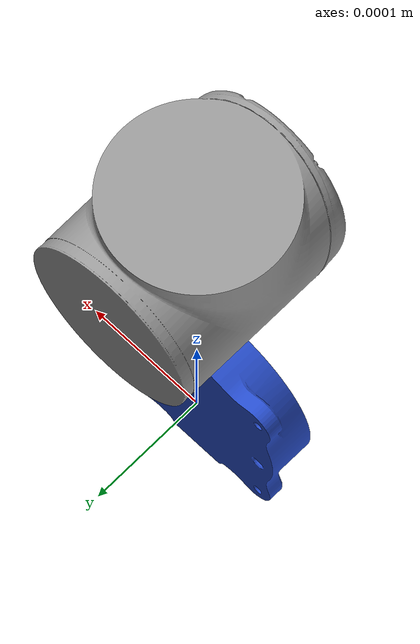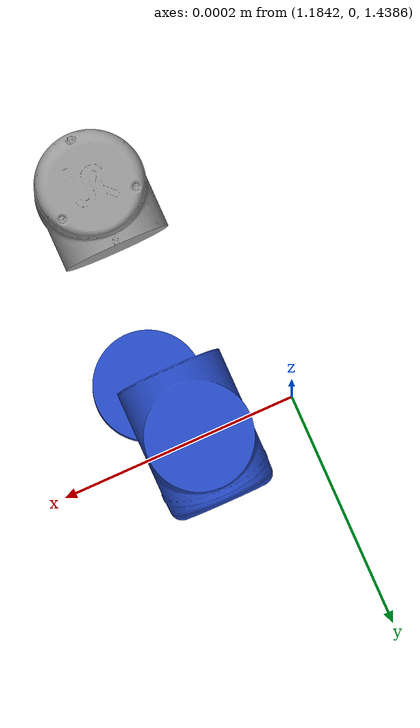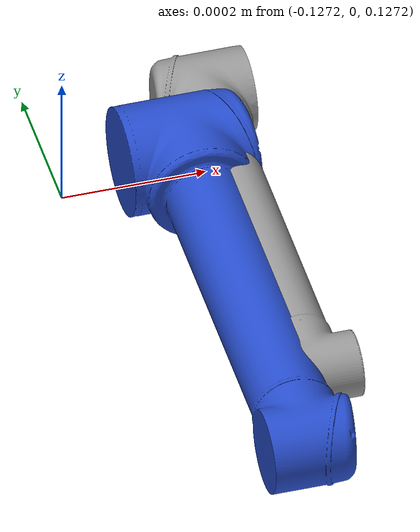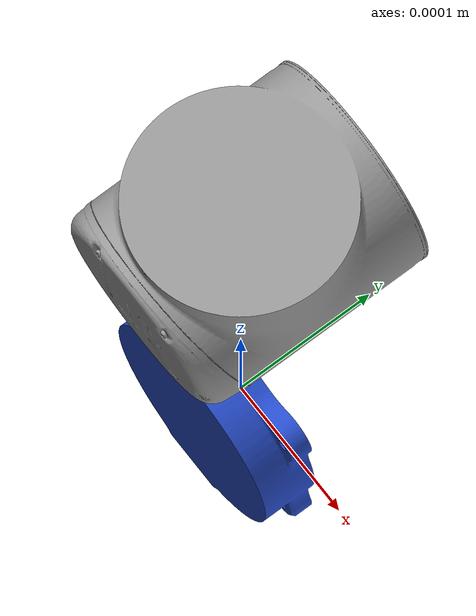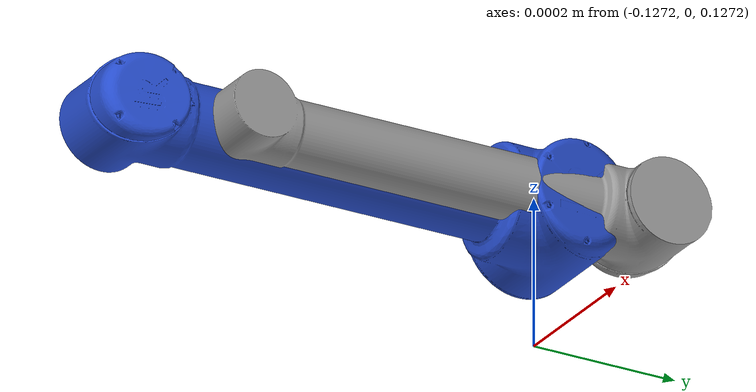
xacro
<?xml version="1.0"?>
<robot xmlns:xacro="http://www.ros.org/wiki/xacro"
       name="ur10" >

  <!-- common stuff -->
  <xacro:include filename="$(find ur_description)/urdf/gazebo.urdf.xacro" />

  <!-- ur10 -->
  <xacro:include filename="$(find ur_description)/urdf/ur10.urdf.xacro" />

  <!-- arm -->
  <xacro:ur10_robot prefix="" cylinders_collision="false"
                    j1_lwr_lmt="${-2.0*pi}" j1_upr_lmt="${2.0*pi}" j1_vel_lmt="2.16"
                    j2_lwr_lmt="${-2.0*pi}" j2_upr_lmt="${2.0*pi}" j2_vel_lmt="2.16"
                    j3_lwr_lmt="${-2.0*pi}" j3_upr_lmt="${2.0*pi}" j3_vel_lmt="3.15"
                    j4_lwr_lmt="${-2.0*pi}" j4_upr_lmt="${2.0*pi}" j4_vel_lmt="3.2"
                    j5_lwr_lmt="${-2.0*pi}" j5_upr_lmt="${2.0*pi}" j5_vel_lmt="3.2"
                    j6_lwr_lmt="${-2.0*pi}" j6_upr_lmt="${2.0*pi}" j6_vel_lmt="3.2"
  />

  <link name="world" />

  <joint name="world_joint" type="fixed">
    <parent link="world" />
    <child link = "base_link" />
    <origin xyz="0.0 0.0 0.0" rpy="0.0 0.0 0.0" />
  </joint>

</robot>

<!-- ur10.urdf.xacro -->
<robot xmlns:xacro="http://www.ros.org/wiki/xacro">

<!--
  Author: Kelsey Hawkins
  Contributers: Jimmy Da Silva, Ajit Krisshna N L, Muhammad Asif Rana
-->

  <xacro:include filename="$(find ur_description)/urdf/ur10.transmission.xacro" />
  <xacro:include filename="$(find ur_description)/urdf/ur10.gazebo.xacro" />
  <xacro:include filename="$(find ur_description)/urdf/materials.urdf.xacro" />

  <property name="pi" value="3.14159265" />
  <property name="scale" value="0.001 0.001 0.001" />

  <!-- Inertia parameters -->
  <property name="base_mass" value="4.0" />  <!-- This mass might be incorrect -->
  <property name="shoulder_mass" value="7.778" />
  <property name="upper_arm_mass" value="12.93" />
  <property name="forearm_mass" value="3.87" />
  <property name="wrist_1_mass" value="1.96" />
  <property name="wrist_2_mass" value="1.96" />
  <property name="wrist_3_mass" value="0.202" />

  <property name="shoulder_cog" value="0.00008 0.00244 -0.037" />
  <property name="upper_arm_cog" value="0.00001 0.15061 0.38757" />
  <property name="forearm_cog" value="-0.00012 0.06112 0.1984" />
  <property name="wrist_1_cog" value="-0.00021 -0.00112 0.02269" />
  <property name="wrist_2_cog" value="-0.00021 0.00112 0.002269" />
  <property name="wrist_3_cog" value="0 -0.001156 -0.00149" />

  <!-- Kinematic model -->
  <!-- Properties from urcontrol.conf -->
  <property name="ur10_d1" value="0.1273" />
  <property name="ur10_a2" value="-0.612" />
  <property name="ur10_a3" value="-0.5723" />
  <property name="ur10_d4" value="0.163941" />
  <property name="ur10_d5" value="0.1157" />
  <property name="ur10_d6" value="0.0922" />

  <!-- Arbitrary offsets for shoulder/elbow joints -->
  <property name="shoulder_offset" value="0.220941" />  <!-- measured from model -->
  <property name="elbow_offset" value="-0.1719" /> <!-- measured from model -->

  <!-- link lengths used in model -->
  <property name="shoulder_height" value="${ur10_d1}" />
  <property name="upper_arm_length" value="${-ur10_a2}" />
  <property name="forearm_length" value="${-ur10_a3}" />
  <property name="wrist_1_length" value="${ur10_d4 - elbow_offset - shoulder_offset}" />
  <property name="wrist_2_length" value="${ur10_d5}" />
  <property name="wrist_3_length" value="${ur10_d6}" />

  <xacro:macro name="cylinder_inertial" params="radius length mass *origin">
    <inertial>
      <mass value="${mass}" />
      <insert_block name="origin" />
      <inertia ixx="${0.0833333 * mass * (3 * radius * radius + length * length)}" ixy="0.0" ixz="0.0"
        iyy="${0.0833333 * mass * (3 * radius * radius + length * length)}" iyz="0.0"
        izz="${0.5 * mass * radius * radius}" />
    </inertial>
  </xacro:macro>

  <xacro:macro name="ur10_robot" params="prefix cylinders_collision j1_lwr_lmt j1_upr_lmt j1_vel_lmt j2_lwr_lmt j2_upr_lmt j2_vel_lmt j3_lwr_lmt j3_upr_lmt j3_vel_lmt j4_lwr_lmt j4_upr_lmt j4_vel_lmt j5_lwr_lmt j5_upr_lmt j5_vel_lmt j6_lwr_lmt j6_upr_lmt j6_vel_lmt">

    <link name="${prefix}base_link" >
      <visual>
        <geometry>
          <mesh filename="package://ur_description/meshes/ur10/visual/Base.dae" scale="${scale}"/>
        </geometry>
        <origin xyz="0.0 0.0 0.0" rpy="${pi / 2.0} 0.0 0.0" />
        <material name="UR/Blue" />
      </visual>
      <collision>
        <xacro:if value="${cylinders_collision}">
          <geometry>
            <cylinder length="0.04" radius="0.10" />
          </geometry>
        <origin xyz="0.0 0.0 0.02" rpy="0.0 0.0 0.0" />
        </xacro:if>
        <xacro:unless value="${cylinders_collision}">
          <geometry>
            <mesh filename="package://ur_description/meshes/ur10/collision/Base.dae" scale="${scale}"/>
          </geometry>
          <origin xyz="0.0 0.0 0.0" rpy="${pi / 2.0} 0.0 0.0" />
        </xacro:unless>
      </collision>
      <xacro:cylinder_inertial radius="0.075" length="0.038" mass="${base_mass}">
        <origin xyz="0.0 0.0 0.0" rpy="0 0 0" />
      </xacro:cylinder_inertial>
    </link>

    <joint name="${prefix}shoulder_pan_joint" type="revolute">
      <parent link="${prefix}base_link" />
      <child link = "${prefix}shoulder_link" />
      <origin xyz="0.0 0.0 ${shoulder_height}" rpy="0.0 0.0 0.0" />
      <axis xyz="0 0 1" />
        <limit lower="${j1_lwr_lmt}" upper="${j1_upr_lmt}" effort="330.0" velocity="${j1_vel_lmt}"/>
      <dynamics damping="0.0" friction="0.0"/>
    </joint>

    <link name="${prefix}shoulder_link">
      <visual>
        <geometry>
          <mesh filename="package://ur_description/meshes/ur10/visual/Shoulder.dae" scale="${scale}"/>
        </geometry>
        <origin rpy="${pi / 2.0} 0.0 0.0" xyz="0.0 0.0 -0.127"/>
        <material name="UR/Grey" />
      </visual>
      <collision>
        <xacro:if value="${cylinders_collision}">
          <geometry>
            <cylinder length="0.171" radius="0.08" />
          </geometry>
          <origin xyz="0.0 0.0 0.0" rpy="0.0 0.0 0.0" />
        </xacro:if>
        <xacro:unless value="${cylinders_collision}">
          <geometry>
            <mesh filename="package://ur_description/meshes/ur10/collision/Shoulder.dae" scale="${scale}"/>
          </geometry>
          <origin rpy="${pi / 2.0} 0.0 0.0" xyz="0.0 0.0 -0.127"/>
        </xacro:unless>
      </collision>
      <xacro:cylinder_inertial radius="0.075" length="0.178" mass="${shoulder_mass}">
        <origin xyz="0.0 0.0 0.0" rpy="0 0 0" />
      </xacro:cylinder_inertial>
    </link>

    <joint name="${prefix}shoulder_lift_joint" type="revolute">
      <parent link="${prefix}shoulder_link" />
      <child link = "${prefix}upper_arm_link" />
      <origin xyz="0.0 ${shoulder_offset} 0.0" rpy="0.0 ${pi / 2.0} 0.0" />
      <axis xyz="0 1 0" />
        <limit lower="${j2_lwr_lmt}" upper="${j2_upr_lmt}" effort="330.0" velocity="${j2_vel_lmt}"/>
      <dynamics damping="0.0" friction="0.0"/>
    </joint>

    <link name="${prefix}upper_arm_link">
      <visual>
        <geometry>
          <mesh filename="package://ur_description/meshes/ur10/visual/UpperArm.dae" scale="${scale}"/>
        </geometry>
        <origin xyz="0.0 -0.221 -0.127" rpy="${pi / 2.0} 0.0 0.0" />  <!-- new offset-->
        <material name="UR/Blue" />
      </visual>
      <collision>
        <xacro:if value="${cylinders_collision}">
          <geometry>
            <cylinder length="${-ur10_a2+0.15}" radius="0.058" />
          </geometry>
          <origin xyz="0.0 -0.042 ${(-ur10_a2+0.15)/2-0.08}" rpy="0.0 0.0 0.0" />
        </xacro:if>
        <xacro:unless value="${cylinders_collision}">
          <geometry>
            <mesh filename="package://ur_description/meshes/ur10/collision/UpperArm.dae" scale="${scale}"/>
          </geometry>
          <origin xyz="0.0 -0.221 -0.127" rpy="${pi / 2.0} 0.0 0.0" />  <!-- new offset-->
        </xacro:unless>
      </collision>
      <xacro:cylinder_inertial radius="0.075" length="${-ur10_a2}" mass="${upper_arm_mass}">
        <origin xyz="0.0 0.0 ${-ur10_a2/2.0}" rpy="0 0 0" />
      </xacro:cylinder_inertial>
    </link>

    <joint name="${prefix}elbow_joint" type="revolute">
      <parent link="${prefix}upper_arm_link" />
      <child link = "${prefix}forearm_link" />
      <origin xyz="0.0 ${elbow_offset} ${upper_arm_length}" rpy="0.0 0.0 0.0" />
      <axis xyz="0 1 0" />
        <limit lower="${j3_lwr_lmt}" upper="${j3_upr_lmt}" effort="150.0" velocity="${j3_vel_lmt}"/>
      <dynamics damping="0.0" friction="0.0"/>
    </joint>

    <link name="${prefix}forearm_link">
      <visual>
         <geometry>
          <mesh filename="package://ur_description/meshes/ur10/visual/Forearm.dae" scale="${scale}"/>
        </geometry>
        <origin xyz="0.0 -0.049 -0.739" rpy="${pi / 2.0} 0.0 0.0" />  <!-- new offset -->
        <material name="UR/Grey" />
      </visual>
      <collision>
        <xacro:if value="${cylinders_collision}">
          <geometry>
            <cylinder length="${(-ur10_a3+0.05)}" radius="0.048" />
          </geometry>
          <origin xyz="0.0 0.0 ${(-ur10_a3+0.05)/2-0.06}" rpy="0.0 0.0 0.0" />
        </xacro:if>
        <xacro:unless value="${cylinders_collision}">
          <geometry>
            <mesh filename="package://ur_description/meshes/ur10/collision/Forearm.dae" scale="${scale}"/>
          </geometry>
          <origin xyz="0.0 -0.049 -0.739" rpy="${pi / 2.0} 0.0 0.0" />  <!-- new offset -->
        </xacro:unless>
      </collision>
      <xacro:cylinder_inertial radius="0.075" length="${-ur10_a3}" mass="${forearm_mass}">
        <origin xyz="0.0 0.0 ${-ur10_a3/2.0}" rpy="0 0 0" />
      </xacro:cylinder_inertial>
    </link>

    <joint name="${prefix}wrist_1_joint" type="revolute">
      <parent link="${prefix}forearm_link" />
      <child link = "${prefix}wrist_1_link" />
      <origin xyz="0.0 0.0 ${forearm_length}" rpy="0.0 ${pi / 2.0} 0.0" />
      <axis xyz="0 1 0" />
        <limit lower="${j4_lwr_lmt}" upper="${j4_upr_lmt}" effort="54.0" velocity="${j4_vel_lmt}"/>
      <dynamics damping="0.0" friction="0.0"/>
    </joint>

    <link name="${prefix}wrist_1_link">
      <visual>
        <geometry>
          <mesh filename="package://ur_description/meshes/ur10/visual/Wrist1.dae" scale="${scale}"/>
        </geometry>
        <origin xyz="0.0 -0.049 -1.312" rpy="${pi / 2.0} 0 0.0" />  <!-- new offset -->
        <material name="UR/Blue" />
      </visual>
      <collision>
        <xacro:if value="${cylinders_collision}">
          <geometry>
            <cylinder length="0.12" radius="0.047" />
          </geometry>
          <origin xyz="0.0 0.01 0.0" rpy="${pi/2} 0.0 0.0" />
        </xacro:if>
        <xacro:unless value="${cylinders_collision}">
          <geometry>
            <mesh filename="package://ur_description/meshes/ur10/collision/Wrist1.dae" scale="${scale}"/>
          </geometry>
          <origin xyz="0.0 -0.049 -1.312" rpy="${pi / 2.0} 0 0.0" />  <!-- new offset -->
        </xacro:unless>
      </collision>
      <xacro:cylinder_inertial radius="0.075" length="0.12" mass="${wrist_1_mass}">
        <origin xyz="0.0 0.0 0.0" rpy="0 0 0" />
      </xacro:cylinder_inertial>
    </link>

    <joint name="${prefix}wrist_2_joint" type="revolute">
      <parent link="${prefix}wrist_1_link" />
      <child link = "${prefix}wrist_2_link" />
      <origin xyz="0.0 ${wrist_1_length} 0.0" rpy="0.0 0.0 0.0" />
      <axis xyz="0 0 1" />
        <limit lower="${j5_lwr_lmt}" upper="${j5_upr_lmt}" effort="54.0" velocity="${j5_vel_lmt}"/>
      <dynamics damping="0.0" friction="0.0"/>
    </joint>

    <link name="${prefix}wrist_2_link">
      <visual>
        <geometry>
          <mesh filename="package://ur_description/meshes/ur10/visual/Wrist2.dae" scale="${scale}"/>
        </geometry>
        <origin xyz="0.0 -0.164 -1.312" rpy="${pi / 2.0} 0.0 0.0" />  <!-- new offset -->
        <material name="UR/Grey" />
      </visual>
      <collision>
        <xacro:if value="${cylinders_collision}">
          <geometry>
            <cylinder length="0.18" radius="0.046" />
          </geometry>
          <origin xyz="0.0 0.0 0.032" rpy="0.0 0.0 0.0" />
        </xacro:if>
        <xacro:unless value="${cylinders_collision}">
          <geometry>
            <mesh filename="package://ur_description/meshes/ur10/collision/Wrist2.dae" scale="${scale}"/>
          </geometry>
          <origin xyz="0.0 -0.164 -1.312" rpy="${pi / 2.0} 0.0 0.0" />  <!-- new offset -->
        </xacro:unless>
      </collision>
      <xacro:cylinder_inertial radius="0.075" length="0.12" mass="${wrist_2_mass}">
        <origin xyz="0.0 0.0 0.0" rpy="0 0 0" />
      </xacro:cylinder_inertial>
    </link>

    <joint name="${prefix}wrist_3_joint" type="revolute">
      <parent link="${prefix}wrist_2_link" />
      <child link = "${prefix}wrist_3_link" />
      <origin xyz="0.0 0.0 ${wrist_2_length}" rpy="0.0 0.0 0.0" />
      <axis xyz="0 1 0" />
        <limit lower="${j6_lwr_lmt}" upper="${j6_upr_lmt}" effort="54.0" velocity="${j6_vel_lmt}"/>
      <dynamics damping="0.0" friction="0.0"/>
    </joint>

    <link name="${prefix}wrist_3_link">
      <visual>
        <geometry>
          <mesh filename="package://ur_description/meshes/ur10/visual/Wrist3.dae" scale="${scale}"/>
        </geometry>
         <origin xyz="0.0 -0.164 -1.427" rpy="${pi / 2.0} 0.0 0" />   <!-- new offset -->
        <material name="UR/Blue" />
      </visual>
      <collision>
        <xacro:if value="${cylinders_collision}">
          <geometry>
            <cylinder length="0.147" radius="0.046" />
          </geometry>
          <origin xyz="0.0 0.017 0.0" rpy="${pi/2} 0.0 0.0" />
        </xacro:if>
        <xacro:unless value="${cylinders_collision}">
          <geometry>
            <mesh filename="package://ur_description/meshes/ur10/collision/Wrist3.dae" scale="${scale}"/>
          </geometry>
           <origin xyz="0.0 -0.164 -1.427" rpy="${pi / 2.0} 0.0 0" />   <!-- new offset -->
        </xacro:unless>
      </collision>
      <xacro:cylinder_inertial radius="0.075" length="0.12" mass="${wrist_3_mass}">
        <origin xyz="0.0 0.0 0.0" rpy="0 0 0" />
      </xacro:cylinder_inertial>
    </link>

    <joint name="${prefix}ee_fixed_joint" type="fixed">
      <parent link="${prefix}wrist_3_link" />
      <child link = "${prefix}ee_link" />
      <origin xyz="0.0 ${wrist_3_length} 0.0" rpy="0.0 0.0 ${pi/2.0}" />
    </joint>

    <link name="${prefix}ee_link" />

    <xacro:ur10_arm_transmission prefix="${prefix}" />
    <xacro:ur10_arm_gazebo prefix="${prefix}" />

  </xacro:macro>
</robot>
